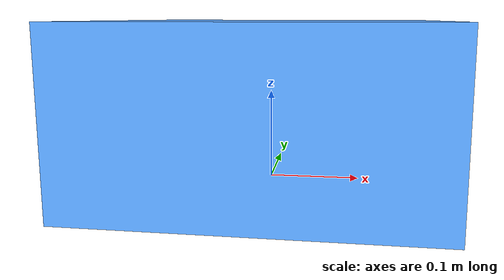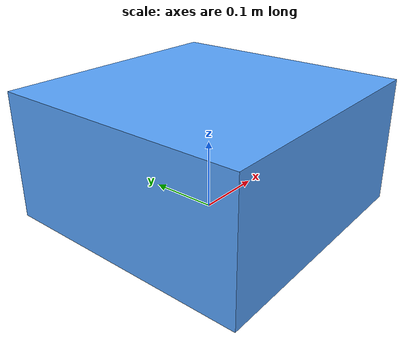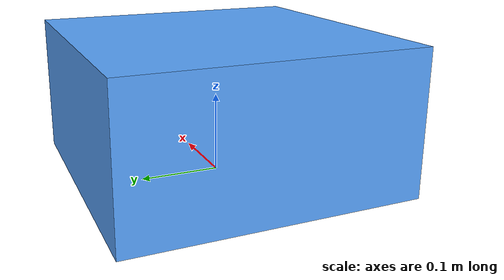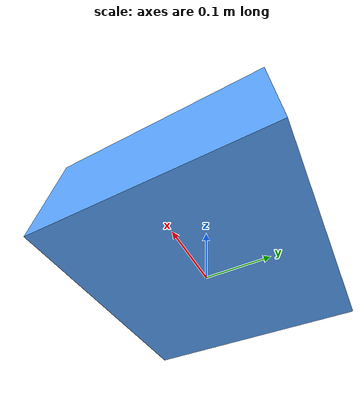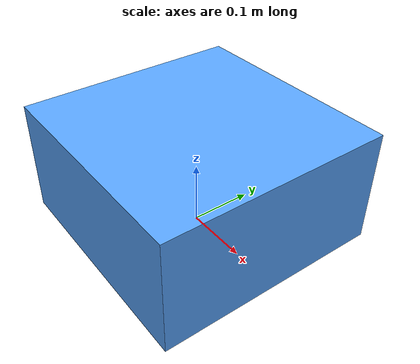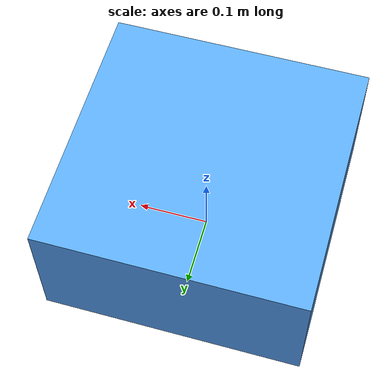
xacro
<?xml version="1.0"?>
<robot xmlns:xacro="http://www.ros.org/wiki/xacro" name="cubey">
  <link name="base_footprint"/>

  <link name="base_link">
    <visual>
      <origin xyz="0 0 0.09" rpy="0 0 0"/>
      <geometry>
        <box size="0.36 0.36 0.18"/>
      </geometry>
      <material name="cubey_blue">
        <color rgba="0.35 0.65 1.0 1.0"/>
      </material>
    </visual>
    <collision>
      <origin xyz="0 0 0.09" rpy="0 0 0"/>
      <geometry>
        <box size="0.36 0.36 0.18"/>
      </geometry>
    </collision>
  </link>

  <joint name="base_footprint_joint" type="fixed">
    <parent link="base_footprint"/>
    <child link="base_link"/>
    <origin xyz="0 0 0" rpy="0 0 0"/>
  </joint>

  <link name="laser"/>
  <joint name="laser_joint" type="fixed">
    <parent link="base_link"/>
    <child link="laser"/>
    <!-- Measure and update Z and any X/Y offset during commissioning. -->
    <origin xyz="0 0 0.18" rpy="0 0 0"/>
  </joint>
</robot>
